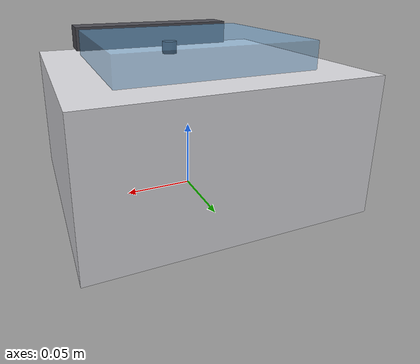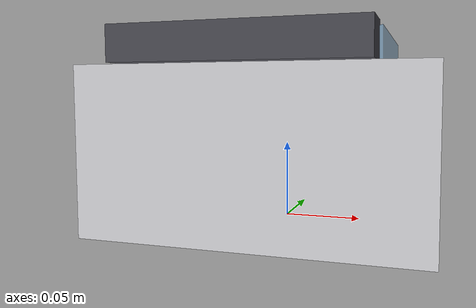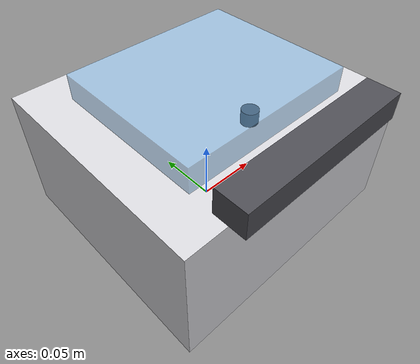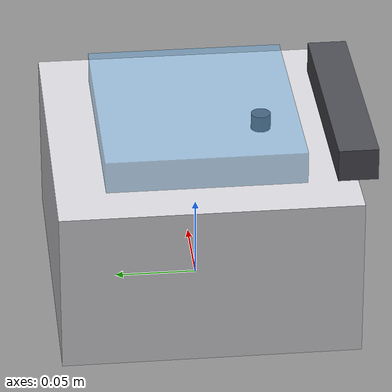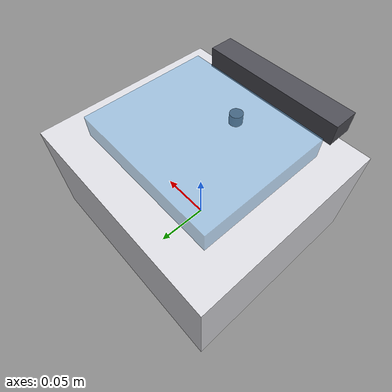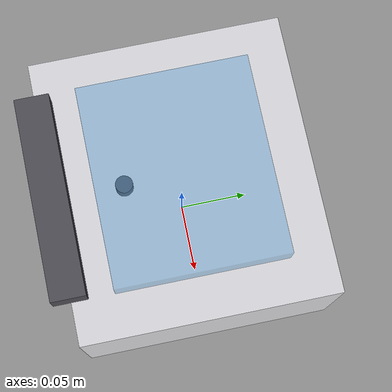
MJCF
<?xml version="1.0" encoding="utf-8"?>
<mujoco model="real_lab_rochester_university_sonicator">
  <compiler angle="radian" autolimits="true"/>
  <default>
    <default class="body"><geom contype="1" conaffinity="1"/></default>
  </default>
  <worldbody>
    <body name="base">
      <geom type="box" size="0.1 0.09 0.05" pos="0 0 0.05" rgba="0.85 0.85 0.87 1" class="body"/>
      <geom type="box" size="0.07 0.06 0.035" pos="0 0 0.085" rgba="0.4 0.65 0.85 0.5" class="body"/>
      <body name="lid" pos="0 -0.09 0.1">
        <joint name="lid_joint" type="hinge" axis="0 1 0" range="0 1.4" damping="0.6" frictionloss="0.25"/>
  <geom type="box" size="0.07 0.012 0.01" pos="0 0 0.01" rgba="0.3 0.3 0.33 1" class="body"/>
  <geom type="cylinder" size="0.006 0.04" pos="0 0.05 -0.03" rgba="0.15 0.15 0.17 1" class="body"/>
      </body>
    </body>
  </worldbody>
</mujoco>
